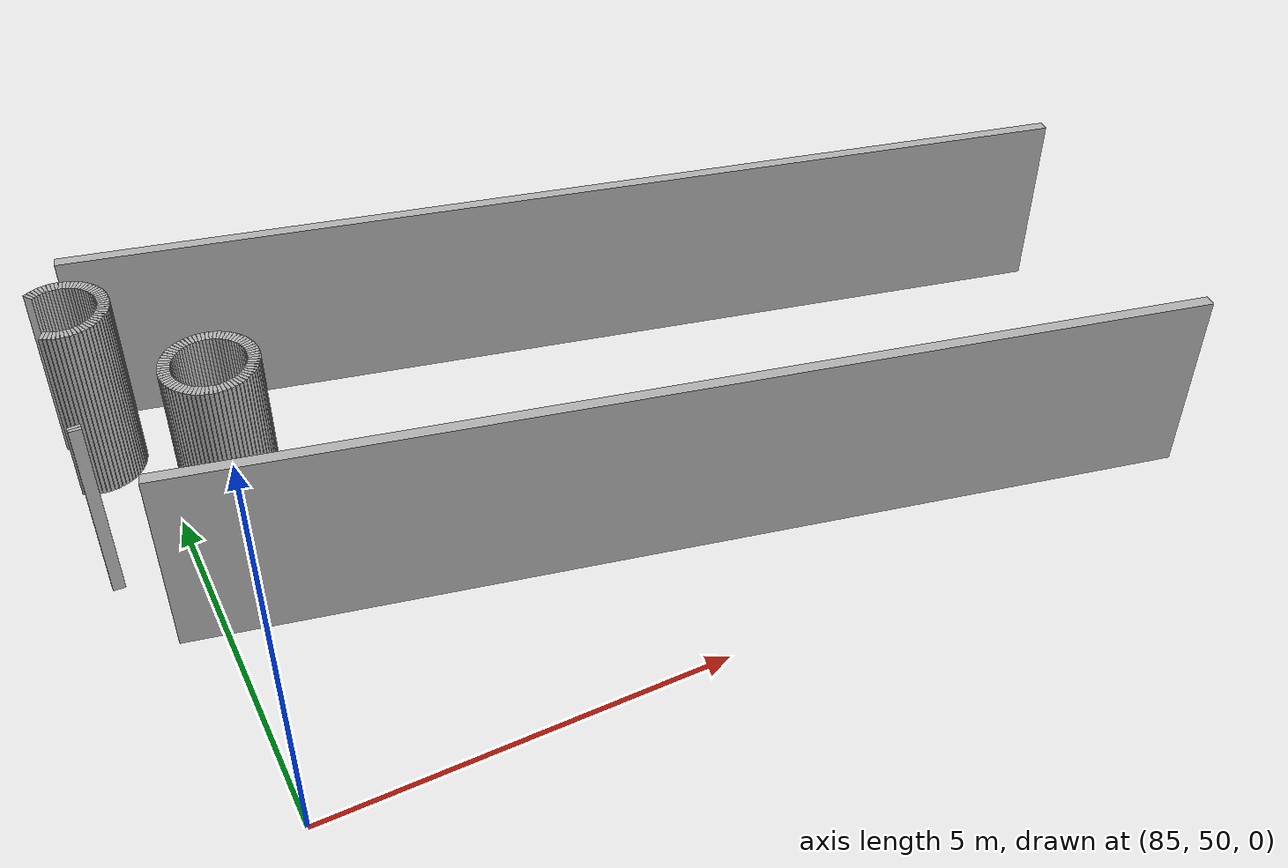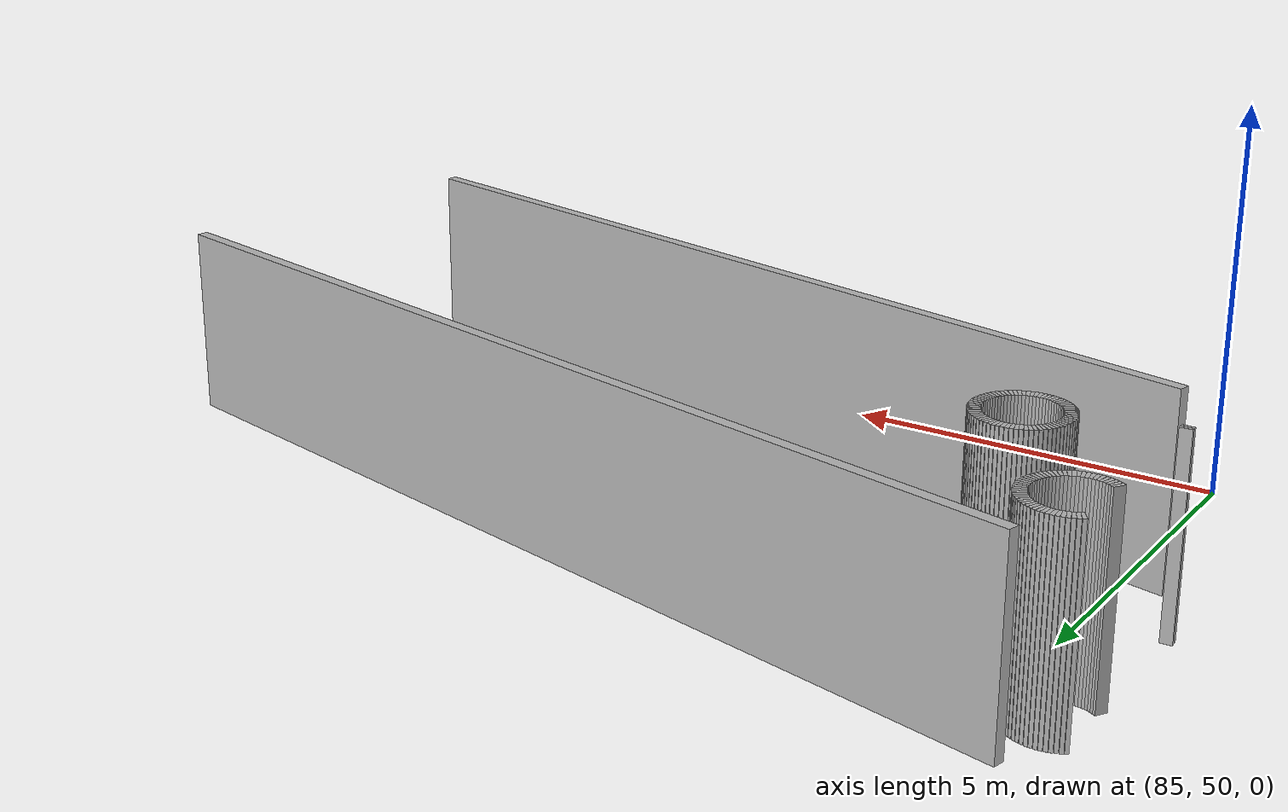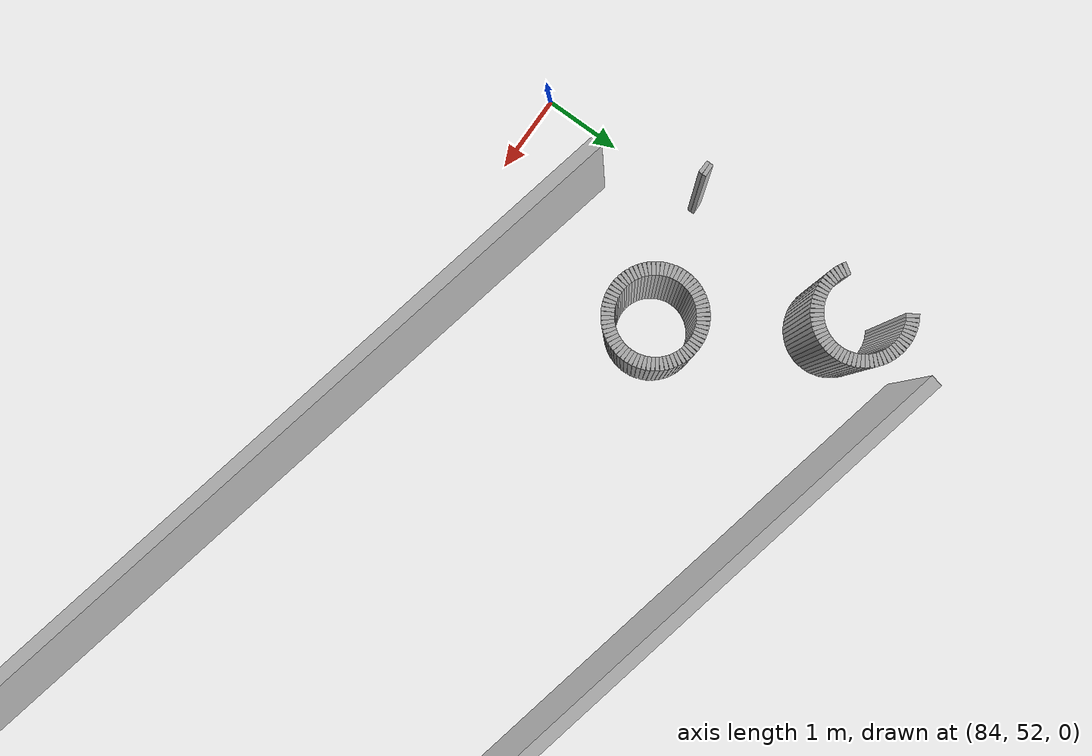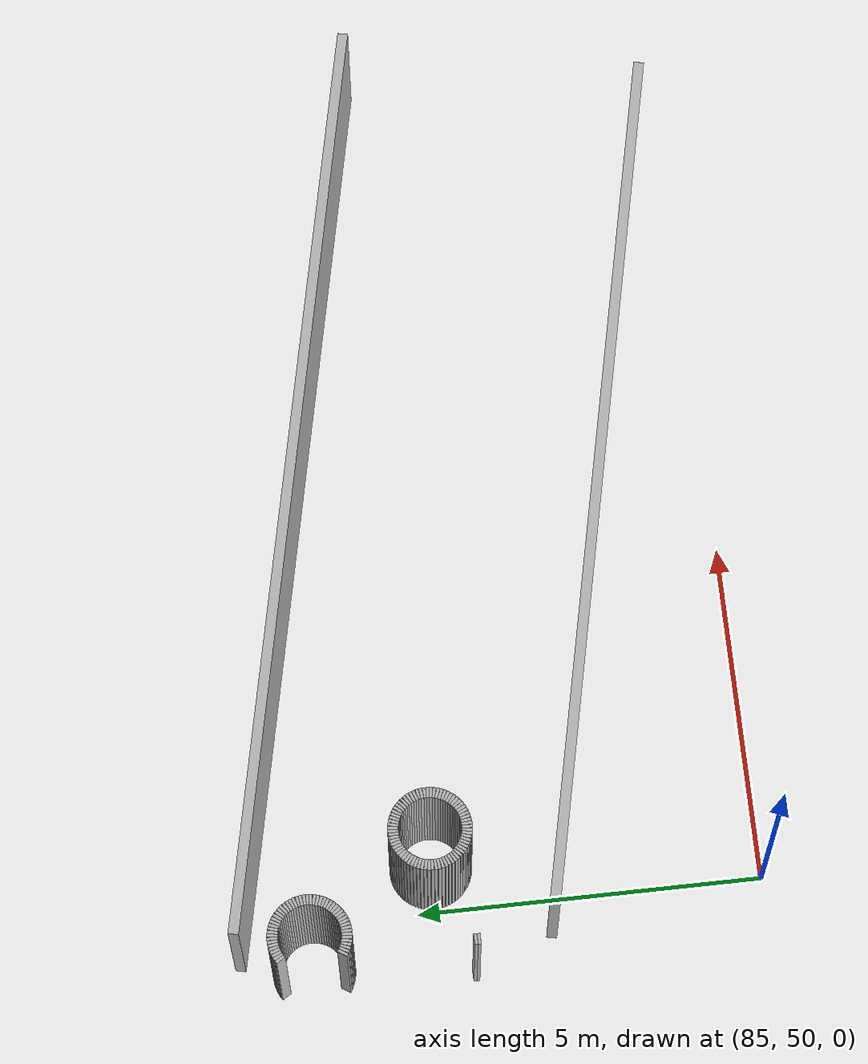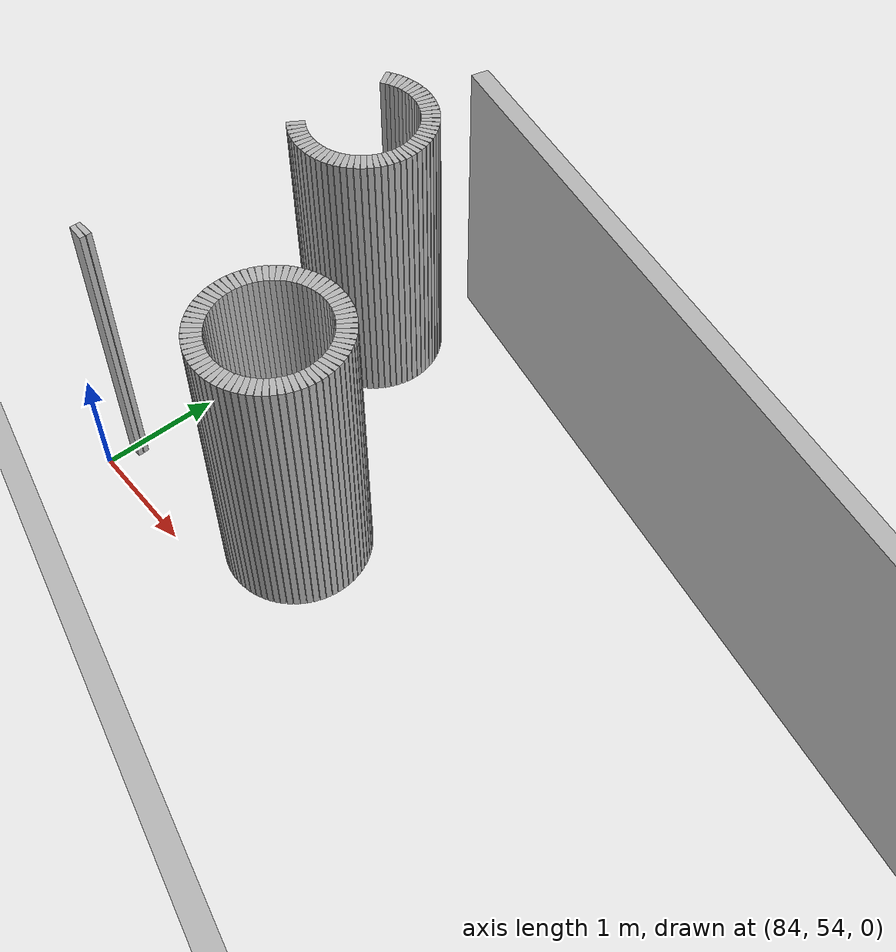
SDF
<sdf version="1.6">
 <model name="sps_1002">
  <static>1</static>
  <allow_auto_disable>0</allow_auto_disable>
  <link name="Wall360">
   <collision name="collision"><geometry><box><size>12.6978 0.15 2.5</size></box></geometry></collision>
   <visual name="visual">
    <geometry><box><size>12.6978 0.15 2.5</size></box></geometry>
    <transparency>0.0</transparency>
   </visual>
   <pose>90.6731 51.7684 1.25 0 -0 2.9273</pose>
  </link>
  <link name="Wall540">
   <collision name="collision"><geometry><box><size>13.6549 0.15 2.5</size></box></geometry></collision>
   <visual name="visual">
    <geometry><box><size>13.6549 0.15 2.5</size></box></geometry>
    <transparency>0.0</transparency>
   </visual>
   <pose>91.1407 56.1696 1.25 0 -0 2.9273</pose>
  </link>
  <link name="Wall913">
   <collision name="collision"><geometry><box><size>0.0453637 0.15 2.5</size></box></geometry></collision>
   <visual name="visual">
    <geometry><box><size>0.0453637 0.15 2.5</size></box></geometry>
    <transparency>0.0</transparency>
   </visual>
   <pose>85.9802 55.1557 1.25 0 0 -0.653727</pose>
  </link>
  <link name="Wall914">
   <collision name="collision"><geometry><box><size>0.0453148 0.15 2.5</size></box></geometry></collision>
   <visual name="visual">
    <geometry><box><size>0.0453148 0.15 2.5</size></box></geometry>
    <transparency>0.0</transparency>
   </visual>
   <pose>86.0149 55.1266 1.25 0 0 -0.742526</pose>
  </link>
  <link name="Wall915">
   <collision name="collision"><geometry><box><size>0.0454498 0.15 2.5</size></box></geometry></collision>
   <visual name="visual">
    <geometry><box><size>0.0454498 0.15 2.5</size></box></geometry>
    <transparency>0.0</transparency>
   </visual>
   <pose>86.047 55.0945 1.25 0 0 -0.830994</pose>
  </link>
  <link name="Wall916">
   <collision name="collision"><geometry><box><size>0.0453637 0.15 2.5</size></box></geometry></collision>
   <visual name="visual">
    <geometry><box><size>0.0453637 0.15 2.5</size></box></geometry>
    <transparency>0.0</transparency>
   </visual>
   <pose>86.0761 55.0597 1.25 0 0 -0.91707</pose>
  </link>
  <link name="Wall917">
   <collision name="collision"><geometry><box><size>0.045342 0.15 2.5</size></box></geometry></collision>
   <visual name="visual">
    <geometry><box><size>0.045342 0.15 2.5</size></box></geometry>
    <transparency>0.0</transparency>
   </visual>
   <pose>86.1021 55.0226 1.25 0 0 -1.00221</pose>
  </link>
  <link name="Wall918">
   <collision name="collision"><geometry><box><size>0.0453724 0.15 2.5</size></box></geometry></collision>
   <visual name="visual">
    <geometry><box><size>0.0453724 0.15 2.5</size></box></geometry>
    <transparency>0.0</transparency>
   </visual>
   <pose>86.1248 54.9834 1.25 0 0 -1.0897</pose>
  </link>
  <link name="Wall919">
   <collision name="collision"><geometry><box><size>0.0454525 0.15 2.5</size></box></geometry></collision>
   <visual name="visual">
    <geometry><box><size>0.0454525 0.15 2.5</size></box></geometry>
    <transparency>0.0</transparency>
   </visual>
   <pose>86.144 54.9423 1.25 0 0 -1.17807</pose>
  </link>
  <link name="Wall920">
   <collision name="collision"><geometry><box><size>0.0453057 0.15 2.5</size></box></geometry></collision>
   <visual name="visual">
    <geometry><box><size>0.0453057 0.15 2.5</size></box></geometry>
    <transparency>0.0</transparency>
   </visual>
   <pose>86.1595 54.8997 1.25 0 0 -1.26566</pose>
  </link>
  <link name="Wall921">
   <collision name="collision"><geometry><box><size>0.0452557 0.15 2.5</size></box></geometry></collision>
   <visual name="visual">
    <geometry><box><size>0.0452557 0.15 2.5</size></box></geometry>
    <transparency>0.0</transparency>
   </visual>
   <pose>86.1712 54.856 1.25 0 0 -1.3533</pose>
  </link>
  <link name="Wall922">
   <collision name="collision"><geometry><box><size>0.0453551 0.15 2.5</size></box></geometry></collision>
   <visual name="visual">
    <geometry><box><size>0.0453551 0.15 2.5</size></box></geometry>
    <transparency>0.0</transparency>
   </visual>
   <pose>86.1789 54.8114 1.25 0 0 -1.4426</pose>
  </link>
  <link name="Wall923">
   <collision name="collision"><geometry><box><size>0.0454548 0.15 2.5</size></box></geometry></collision>
   <visual name="visual">
    <geometry><box><size>0.0454548 0.15 2.5</size></box></geometry>
    <transparency>0.0</transparency>
   </visual>
   <pose>86.1829 54.7662 1.25 0 0 -1.52647</pose>
  </link>
  <link name="Wall924">
   <collision name="collision"><geometry><box><size>0.0454548 0.15 2.5</size></box></geometry></collision>
   <visual name="visual">
    <geometry><box><size>0.0454548 0.15 2.5</size></box></geometry>
    <transparency>0.0</transparency>
   </visual>
   <pose>86.1829 54.7208 1.25 0 0 -1.61512</pose>
  </link>
  <link name="Wall925">
   <collision name="collision"><geometry><box><size>0.0451735 0.15 2.5</size></box></geometry></collision>
   <visual name="visual">
    <geometry><box><size>0.0451735 0.15 2.5</size></box></geometry>
    <transparency>0.0</transparency>
   </visual>
   <pose>86.1789 54.6757 1.25 0 0 -1.69951</pose>
  </link>
  <link name="Wall926">
   <collision name="collision"><geometry><box><size>0.0454876 0.15 2.5</size></box></geometry></collision>
   <visual name="visual">
    <geometry><box><size>0.0454876 0.15 2.5</size></box></geometry>
    <transparency>0.0</transparency>
   </visual>
   <pose>86.171 54.6311 1.25 0 0 -1.79267</pose>
  </link>
  <link name="Wall927">
   <collision name="collision"><geometry><box><size>0.0453057 0.15 2.5</size></box></geometry></collision>
   <visual name="visual">
    <geometry><box><size>0.0453057 0.15 2.5</size></box></geometry>
    <transparency>0.0</transparency>
   </visual>
   <pose>86.1592 54.5873 1.25 0 0 -1.87593</pose>
  </link>
  <link name="Wall928">
   <collision name="collision"><geometry><box><size>0.0454525 0.15 2.5</size></box></geometry></collision>
   <visual name="visual">
    <geometry><box><size>0.0454525 0.15 2.5</size></box></geometry>
    <transparency>0.0</transparency>
   </visual>
   <pose>86.1437 54.5447 1.25 0 0 -1.96352</pose>
  </link>
  <link name="Wall929">
   <collision name="collision"><geometry><box><size>0.0453724 0.15 2.5</size></box></geometry></collision>
   <visual name="visual">
    <geometry><box><size>0.0453724 0.15 2.5</size></box></geometry>
    <transparency>0.0</transparency>
   </visual>
   <pose>86.1245 54.5036 1.25 0 0 -2.05189</pose>
  </link>
  <link name="Wall930">
   <collision name="collision"><geometry><box><size>0.0453092 0.15 2.5</size></box></geometry></collision>
   <visual name="visual">
    <geometry><box><size>0.0453092 0.15 2.5</size></box></geometry>
    <transparency>0.0</transparency>
   </visual>
   <pose>86.1019 54.4644 1.25 0 0 -2.13825</pose>
  </link>
  <link name="Wall931">
   <collision name="collision"><geometry><box><size>0.0453524 0.15 2.5</size></box></geometry></collision>
   <visual name="visual">
    <geometry><box><size>0.0453524 0.15 2.5</size></box></geometry>
    <transparency>0.0</transparency>
   </visual>
   <pose>86.0759 54.4273 1.25 0 0 -2.22641</pose>
  </link>
  <link name="Wall932">
   <collision name="collision"><geometry><box><size>0.0453186 0.15 2.5</size></box></geometry></collision>
   <visual name="visual">
    <geometry><box><size>0.0453186 0.15 2.5</size></box></geometry>
    <transparency>0.0</transparency>
   </visual>
   <pose>86.0467 54.3926 1.25 0 0 -2.31142</pose>
  </link>
  <link name="Wall933">
   <collision name="collision"><geometry><box><size>0.0453974 0.15 2.5</size></box></geometry></collision>
   <visual name="visual">
    <geometry><box><size>0.0453974 0.15 2.5</size></box></geometry>
    <transparency>0.0</transparency>
   </visual>
   <pose>86.0148 54.3605 1.25 0 0 -2.39709</pose>
  </link>
  <link name="Wall934">
   <collision name="collision"><geometry><box><size>0.0453637 0.15 2.5</size></box></geometry></collision>
   <visual name="visual">
    <geometry><box><size>0.0453637 0.15 2.5</size></box></geometry>
    <transparency>0.0</transparency>
   </visual>
   <pose>85.9801 54.3313 1.25 0 0 -2.48787</pose>
  </link>
  <link name="Wall935">
   <collision name="collision"><geometry><box><size>0.0452437 0.15 2.5</size></box></geometry></collision>
   <visual name="visual">
    <geometry><box><size>0.0452437 0.15 2.5</size></box></geometry>
    <transparency>0.0</transparency>
   </visual>
   <pose>85.943 54.3054 1.25 0 0 -2.57642</pose>
  </link>
  <link name="Wall936">
   <collision name="collision"><geometry><box><size>0.0455348 0.15 2.5</size></box></geometry></collision>
   <visual name="visual">
    <geometry><box><size>0.0455348 0.15 2.5</size></box></geometry>
    <transparency>0.0</transparency>
   </visual>
   <pose>85.9036 54.2828 1.25 0 0 -2.66236</pose>
  </link>
  <link name="Wall937">
   <collision name="collision"><geometry><box><size>0.0452834 0.15 2.5</size></box></geometry></collision>
   <visual name="visual">
    <geometry><box><size>0.0452834 0.15 2.5</size></box></geometry>
    <transparency>0.0</transparency>
   </visual>
   <pose>85.8625 54.2636 1.25 0 0 -2.74732</pose>
  </link>
  <link name="Wall938">
   <collision name="collision"><geometry><box><size>0.0454804 0.15 2.5</size></box></geometry></collision>
   <visual name="visual">
    <geometry><box><size>0.0454804 0.15 2.5</size></box></geometry>
    <transparency>0.0</transparency>
   </visual>
   <pose>85.8199 54.2481 1.25 0 0 -2.83767</pose>
  </link>
  <link name="Wall939">
   <collision name="collision"><geometry><box><size>0.0452557 0.15 2.5</size></box></geometry></collision>
   <visual name="visual">
    <geometry><box><size>0.0452557 0.15 2.5</size></box></geometry>
    <transparency>0.0</transparency>
   </visual>
   <pose>85.7761 54.2364 1.25 0 0 -2.92409</pose>
  </link>
  <link name="Wall940">
   <collision name="collision"><geometry><box><size>0.0453869 0.15 2.5</size></box></geometry></collision>
   <visual name="visual">
    <geometry><box><size>0.0453869 0.15 2.5</size></box></geometry>
    <transparency>0.0</transparency>
   </visual>
   <pose>85.7316 54.2285 1.25 0 0 -3.00806</pose>
  </link>
  <link name="Wall941">
   <collision name="collision"><geometry><box><size>0.0454446 0.15 2.5</size></box></geometry></collision>
   <visual name="visual">
    <geometry><box><size>0.0454446 0.15 2.5</size></box></geometry>
    <transparency>0.0</transparency>
   </visual>
   <pose>85.6864 54.2246 1.25 0 0 -3.10263</pose>
  </link>
  <link name="Wall942">
   <collision name="collision"><geometry><box><size>0.0452617 0.15 2.5</size></box></geometry></collision>
   <visual name="visual">
    <geometry><box><size>0.0452617 0.15 2.5</size></box></geometry>
    <transparency>0.0</transparency>
   </visual>
   <pose>85.641 54.2246 1.25 0 -0 3.10248</pose>
  </link>
  <link name="Wall943">
   <collision name="collision"><geometry><box><size>0.0453869 0.15 2.5</size></box></geometry></collision>
   <visual name="visual">
    <geometry><box><size>0.0453869 0.15 2.5</size></box></geometry>
    <transparency>0.0</transparency>
   </visual>
   <pose>85.5959 54.2285 1.25 0 -0 3.00806</pose>
  </link>
  <link name="Wall944">
   <collision name="collision"><geometry><box><size>0.0454742 0.15 2.5</size></box></geometry></collision>
   <visual name="visual">
    <geometry><box><size>0.0454742 0.15 2.5</size></box></geometry>
    <transparency>0.0</transparency>
   </visual>
   <pose>85.5513 54.2365 1.25 0 -0 2.92103</pose>
  </link>
  <link name="Wall945">
   <collision name="collision"><geometry><box><size>0.0453057 0.15 2.5</size></box></geometry></collision>
   <visual name="visual">
    <geometry><box><size>0.0453057 0.15 2.5</size></box></geometry>
    <transparency>0.0</transparency>
   </visual>
   <pose>85.5075 54.2483 1.25 0 -0 2.83646</pose>
  </link>
  <link name="Wall946">
   <collision name="collision"><geometry><box><size>0.0452834 0.15 2.5</size></box></geometry></collision>
   <visual name="visual">
    <geometry><box><size>0.0452834 0.15 2.5</size></box></geometry>
    <transparency>0.0</transparency>
   </visual>
   <pose>85.465 54.2638 1.25 0 -0 2.74732</pose>
  </link>
  <link name="Wall947">
   <collision name="collision"><geometry><box><size>0.045288 0.15 2.5</size></box></geometry></collision>
   <visual name="visual">
    <geometry><box><size>0.045288 0.15 2.5</size></box></geometry>
    <transparency>0.0</transparency>
   </visual>
   <pose>85.4239 54.2829 1.25 0 -0 2.66408</pose>
  </link>
  <link name="Wall948">
   <collision name="collision"><geometry><box><size>0.0454964 0.15 2.5</size></box></geometry></collision>
   <visual name="visual">
    <geometry><box><size>0.0454964 0.15 2.5</size></box></geometry>
    <transparency>0.0</transparency>
   </visual>
   <pose>85.3846 54.3055 1.25 0 -0 2.57517</pose>
  </link>
  <link name="Wall949">
   <collision name="collision"><geometry><box><size>0.0454753 0.15 2.5</size></box></geometry></collision>
   <visual name="visual">
    <geometry><box><size>0.0454753 0.15 2.5</size></box></geometry>
    <transparency>0.0</transparency>
   </visual>
   <pose>85.3474 54.3316 1.25 0 -0 2.48467</pose>
  </link>
  <link name="Wall950">
   <collision name="collision"><geometry><box><size>0.0453148 0.15 2.5</size></box></geometry></collision>
   <visual name="visual">
    <geometry><box><size>0.0453148 0.15 2.5</size></box></geometry>
    <transparency>0.0</transparency>
   </visual>
   <pose>85.3127 54.3608 1.25 0 -0 2.39907</pose>
  </link>
  <link name="Wall951">
   <collision name="collision"><geometry><box><size>0.0452735 0.15 2.5</size></box></geometry></collision>
   <visual name="visual">
    <geometry><box><size>0.0452735 0.15 2.5</size></box></geometry>
    <transparency>0.0</transparency>
   </visual>
   <pose>85.2808 54.3928 1.25 0 -0 2.31233</pose>
  </link>
  <link name="Wall952">
   <collision name="collision"><geometry><box><size>0.0453637 0.15 2.5</size></box></geometry></collision>
   <visual name="visual">
    <geometry><box><size>0.0453637 0.15 2.5</size></box></geometry>
    <transparency>0.0</transparency>
   </visual>
   <pose>85.2517 54.4275 1.25 0 -0 2.22452</pose>
  </link>
  <link name="Wall953">
   <collision name="collision"><geometry><box><size>0.045342 0.15 2.5</size></box></geometry></collision>
   <visual name="visual">
    <geometry><box><size>0.045342 0.15 2.5</size></box></geometry>
    <transparency>0.0</transparency>
   </visual>
   <pose>85.2257 54.4646 1.25 0 -0 2.13938</pose>
  </link>
  <link name="Wall954">
   <collision name="collision"><geometry><box><size>0.0453183 0.15 2.5</size></box></geometry></collision>
   <visual name="visual">
    <geometry><box><size>0.0453183 0.15 2.5</size></box></geometry>
    <transparency>0.0</transparency>
   </visual>
   <pose>85.203 54.5038 1.25 0 -0 2.05251</pose>
  </link>
  <link name="Wall955">
   <collision name="collision"><geometry><box><size>0.0453827 0.15 2.5</size></box></geometry></collision>
   <visual name="visual">
    <geometry><box><size>0.0453827 0.15 2.5</size></box></geometry>
    <transparency>0.0</transparency>
   </visual>
   <pose>85.1839 54.5449 1.25 0 -0 1.95979</pose>
  </link>
  <link name="Wall956">
   <collision name="collision"><geometry><box><size>0.0454804 0.15 2.5</size></box></geometry></collision>
   <visual name="visual">
    <geometry><box><size>0.0454804 0.15 2.5</size></box></geometry>
    <transparency>0.0</transparency>
   </visual>
   <pose>85.1684 54.5876 1.25 0 -0 1.87472</pose>
  </link>
  <link name="Wall957">
   <collision name="collision"><geometry><box><size>0.0453685 0.15 2.5</size></box></geometry></collision>
   <visual name="visual">
    <geometry><box><size>0.0453685 0.15 2.5</size></box></geometry>
    <transparency>0.0</transparency>
   </visual>
   <pose>85.1566 54.6314 1.25 0 -0 1.79326</pose>
  </link>
  <link name="Wall958">
   <collision name="collision"><geometry><box><size>0.0453551 0.15 2.5</size></box></geometry></collision>
   <visual name="visual">
    <geometry><box><size>0.0453551 0.15 2.5</size></box></geometry>
    <transparency>0.0</transparency>
   </visual>
   <pose>85.1487 54.676 1.25 0 -0 1.69899</pose>
  </link>
  <link name="Wall959">
   <collision name="collision"><geometry><box><size>0.0452082 0.15 2.5</size></box></geometry></collision>
   <visual name="visual">
    <geometry><box><size>0.0452082 0.15 2.5</size></box></geometry>
    <transparency>0.0</transparency>
   </visual>
   <pose>85.1449 54.7211 1.25 0 -0 1.61401</pose>
  </link>
  <link name="Wall960">
   <collision name="collision"><geometry><box><size>0.0454521 0.15 2.5</size></box></geometry></collision>
   <visual name="visual">
    <geometry><box><size>0.0454521 0.15 2.5</size></box></geometry>
    <transparency>0.0</transparency>
   </visual>
   <pose>85.1449 54.7664 1.25 0 -0 1.52781</pose>
  </link>
  <link name="Wall961">
   <collision name="collision"><geometry><box><size>0.0454474 0.15 2.5</size></box></geometry></collision>
   <visual name="visual">
    <geometry><box><size>0.0454474 0.15 2.5</size></box></geometry>
    <transparency>0.0</transparency>
   </visual>
   <pose>85.1489 54.8116 1.25 0 -0 1.43745</pose>
  </link>
  <link name="Wall962">
   <collision name="collision"><geometry><box><size>0.0452557 0.15 2.5</size></box></geometry></collision>
   <visual name="visual">
    <geometry><box><size>0.0452557 0.15 2.5</size></box></geometry>
    <transparency>0.0</transparency>
   </visual>
   <pose>85.1568 54.8562 1.25 0 -0 1.3533</pose>
  </link>
  <link name="Wall963">
   <collision name="collision"><geometry><box><size>0.0454804 0.15 2.5</size></box></geometry></collision>
   <visual name="visual">
    <geometry><box><size>0.0454804 0.15 2.5</size></box></geometry>
    <transparency>0.0</transparency>
   </visual>
   <pose>85.1684 54.9 1.25 0 -0 1.26687</pose>
  </link>
  <link name="Wall964">
   <collision name="collision"><geometry><box><size>0.0452834 0.15 2.5</size></box></geometry></collision>
   <visual name="visual">
    <geometry><box><size>0.0452834 0.15 2.5</size></box></geometry>
    <transparency>0.0</transparency>
   </visual>
   <pose>85.184 54.9426 1.25 0 -0 1.17652</pose>
  </link>
  <link name="Wall965">
   <collision name="collision"><geometry><box><size>0.0453183 0.15 2.5</size></box></geometry></collision>
   <visual name="visual">
    <geometry><box><size>0.0453183 0.15 2.5</size></box></geometry>
    <transparency>0.0</transparency>
   </visual>
   <pose>85.2031 54.9836 1.25 0 -0 1.08908</pose>
  </link>
  <link name="Wall966">
   <collision name="collision"><geometry><box><size>0.0454964 0.15 2.5</size></box></geometry></collision>
   <visual name="visual">
    <geometry><box><size>0.0454964 0.15 2.5</size></box></geometry>
    <transparency>0.0</transparency>
   </visual>
   <pose>85.2259 55.0229 1.25 0 -0 1.00438</pose>
  </link>
  <link name="Wall967">
   <collision name="collision"><geometry><box><size>0.0453637 0.15 2.5</size></box></geometry></collision>
   <visual name="visual">
    <geometry><box><size>0.0453637 0.15 2.5</size></box></geometry>
    <transparency>0.0</transparency>
   </visual>
   <pose>85.2519 55.0601 1.25 0 -0 0.91707</pose>
  </link>
  <link name="Wall968">
   <collision name="collision"><geometry><box><size>0.0452735 0.15 2.5</size></box></geometry></collision>
   <visual name="visual">
    <geometry><box><size>0.0452735 0.15 2.5</size></box></geometry>
    <transparency>0.0</transparency>
   </visual>
   <pose>85.2809 55.0948 1.25 0 -0 0.829263</pose>
  </link>
  <link name="Wall969">
   <collision name="collision"><geometry><box><size>0.0453598 0.15 2.5</size></box></geometry></collision>
   <visual name="visual">
    <geometry><box><size>0.0453598 0.15 2.5</size></box></geometry>
    <transparency>0.0</transparency>
   </visual>
   <pose>85.3129 55.1268 1.25 0 -0 0.741617</pose>
  </link>
  <link name="Wall970">
   <collision name="collision"><geometry><box><size>0.0453637 0.15 2.5</size></box></geometry></collision>
   <visual name="visual">
    <geometry><box><size>0.0453637 0.15 2.5</size></box></geometry>
    <transparency>0.0</transparency>
   </visual>
   <pose>85.3477 55.1559 1.25 0 -0 0.653727</pose>
  </link>
  <link name="Wall971">
   <collision name="collision"><geometry><box><size>0.0454964 0.15 2.5</size></box></geometry></collision>
   <visual name="visual">
    <geometry><box><size>0.0454964 0.15 2.5</size></box></geometry>
    <transparency>0.0</transparency>
   </visual>
   <pose>85.3849 55.1819 1.25 0 -0 0.566421</pose>
  </link>
  <link name="Wall972">
   <collision name="collision"><geometry><box><size>0.0452338 0.15 2.5</size></box></geometry></collision>
   <visual name="visual">
    <geometry><box><size>0.0452338 0.15 2.5</size></box></geometry>
    <transparency>0.0</transparency>
   </visual>
   <pose>85.4242 55.2045 1.25 0 -0 0.478131</pose>
  </link>
  <link name="Wall973">
   <collision name="collision"><geometry><box><size>0.0454525 0.15 2.5</size></box></geometry></collision>
   <visual name="visual">
    <geometry><box><size>0.0454525 0.15 2.5</size></box></geometry>
    <transparency>0.0</transparency>
   </visual>
   <pose>85.4652 55.2236 1.25 0 -0 0.392725</pose>
  </link>
  <link name="Wall974">
   <collision name="collision"><geometry><box><size>0.0452874 0.15 2.5</size></box></geometry></collision>
   <visual name="visual">
    <geometry><box><size>0.0452874 0.15 2.5</size></box></geometry>
    <transparency>0.0</transparency>
   </visual>
   <pose>85.5078 55.2391 1.25 0 -0 0.30385</pose>
  </link>
  <link name="Wall975">
   <collision name="collision"><geometry><box><size>0.0452689 0.15 2.5</size></box></geometry></collision>
   <visual name="visual">
    <geometry><box><size>0.0452689 0.15 2.5</size></box></geometry>
    <transparency>0.0</transparency>
   </visual>
   <pose>85.5515 55.2508 1.25 0 -0 0.218815</pose>
  </link>
  <link name="Wall976">
   <collision name="collision"><geometry><box><size>0.0454394 0.15 2.5</size></box></geometry></collision>
   <visual name="visual">
    <geometry><box><size>0.0454394 0.15 2.5</size></box></geometry>
    <transparency>0.0</transparency>
   </visual>
   <pose>85.5962 55.2587 1.25 0 -0 0.132019</pose>
  </link>
  <link name="Wall977">
   <collision name="collision"><geometry><box><size>0.0454548 0.15 2.5</size></box></geometry></collision>
   <visual name="visual">
    <geometry><box><size>0.0454548 0.15 2.5</size></box></geometry>
    <transparency>0.0</transparency>
   </visual>
   <pose>85.6414 55.2627 1.25 0 -0 0.0443258</pose>
  </link>
  <link name="Wall978">
   <collision name="collision"><geometry><box><size>0.0453938 0.15 2.5</size></box></geometry></collision>
   <visual name="visual">
    <geometry><box><size>0.0453938 0.15 2.5</size></box></geometry>
    <transparency>0.0</transparency>
   </visual>
   <pose>85.6868 55.2627 1.25 0 0 -0.0443854</pose>
  </link>
  <link name="Wall979">
   <collision name="collision"><geometry><box><size>0.0451973 0.15 2.5</size></box></geometry></collision>
   <visual name="visual">
    <geometry><box><size>0.0451973 0.15 2.5</size></box></geometry>
    <transparency>0.0</transparency>
   </visual>
   <pose>85.7318 55.2587 1.25 0 0 -0.13273</pose>
  </link>
  <link name="Wall980">
   <collision name="collision"><geometry><box><size>0.0455072 0.15 2.5</size></box></geometry></collision>
   <visual name="visual">
    <geometry><box><size>0.0455072 0.15 2.5</size></box></geometry>
    <transparency>0.0</transparency>
   </visual>
   <pose>85.7765 55.2508 1.25 0 0 -0.217651</pose>
  </link>
  <link name="Wall981">
   <collision name="collision"><geometry><box><size>0.0452874 0.15 2.5</size></box></geometry></collision>
   <visual name="visual">
    <geometry><box><size>0.0452874 0.15 2.5</size></box></geometry>
    <transparency>0.0</transparency>
   </visual>
   <pose>85.8203 55.2391 1.25 0 0 -0.30385</pose>
  </link>
  <link name="Wall982">
   <collision name="collision"><geometry><box><size>0.0454525 0.15 2.5</size></box></geometry></collision>
   <visual name="visual">
    <geometry><box><size>0.0454525 0.15 2.5</size></box></geometry>
    <transparency>0.0</transparency>
   </visual>
   <pose>85.8629 55.2236 1.25 0 0 -0.392725</pose>
  </link>
  <link name="Wall983">
   <collision name="collision"><geometry><box><size>0.0453183 0.15 2.5</size></box></geometry></collision>
   <visual name="visual">
    <geometry><box><size>0.0453183 0.15 2.5</size></box></geometry>
    <transparency>0.0</transparency>
   </visual>
   <pose>85.904 55.2044 1.25 0 0 -0.481718</pose>
  </link>
  <link name="Wall984">
   <collision name="collision"><geometry><box><size>0.045342 0.15 2.5</size></box></geometry></collision>
   <visual name="visual">
    <geometry><box><size>0.045342 0.15 2.5</size></box></geometry>
    <transparency>0.0</transparency>
   </visual>
   <pose>85.9431 55.1817 1.25 0 0 -0.568588</pose>
  </link>
  <link name="Wall1507">
   <collision name="collision"><geometry><box><size>0.0455462 0.15 2.5</size></box></geometry></collision>
   <visual name="visual">
    <geometry><box><size>0.0455462 0.15 2.5</size></box></geometry>
    <transparency>0.0</transparency>
   </visual>
   <pose>84.6379 56.9829 1.25 0 0 -0.652346</pose>
  </link>
  <link name="Wall1508">
   <collision name="collision"><geometry><box><size>0.0453186 0.15 2.5</size></box></geometry></collision>
   <visual name="visual">
    <geometry><box><size>0.0453186 0.15 2.5</size></box></geometry>
    <transparency>0.0</transparency>
   </visual>
   <pose>84.6728 56.9538 1.25 0 0 -0.740624</pose>
  </link>
  <link name="Wall1509">
   <collision name="collision"><geometry><box><size>0.0454087 0.15 2.5</size></box></geometry></collision>
   <visual name="visual">
    <geometry><box><size>0.0454087 0.15 2.5</size></box></geometry>
    <transparency>0.0</transparency>
   </visual>
   <pose>84.7048 56.9217 1.25 0 0 -0.831987</pose>
  </link>
  <link name="Wall1510">
   <collision name="collision"><geometry><box><size>0.0453637 0.15 2.5</size></box></geometry></collision>
   <visual name="visual">
    <geometry><box><size>0.0453637 0.15 2.5</size></box></geometry>
    <transparency>0.0</transparency>
   </visual>
   <pose>84.7338 56.8869 1.25 0 0 -0.91707</pose>
  </link>
  <link name="Wall1511">
   <collision name="collision"><geometry><box><size>0.045342 0.15 2.5</size></box></geometry></collision>
   <visual name="visual">
    <geometry><box><size>0.045342 0.15 2.5</size></box></geometry>
    <transparency>0.0</transparency>
   </visual>
   <pose>84.7598 56.8498 1.25 0 0 -1.00221</pose>
  </link>
  <link name="Wall1512">
   <collision name="collision"><geometry><box><size>0.045288 0.15 2.5</size></box></geometry></collision>
   <visual name="visual">
    <geometry><box><size>0.045288 0.15 2.5</size></box></geometry>
    <transparency>0.0</transparency>
   </visual>
   <pose>84.7825 56.8106 1.25 0 0 -1.09329</pose>
  </link>
  <link name="Wall1513">
   <collision name="collision"><geometry><box><size>0.0454525 0.15 2.5</size></box></geometry></collision>
   <visual name="visual">
    <geometry><box><size>0.0454525 0.15 2.5</size></box></geometry>
    <transparency>0.0</transparency>
   </visual>
   <pose>84.8016 56.7695 1.25 0 0 -1.17807</pose>
  </link>
  <link name="Wall1514">
   <collision name="collision"><geometry><box><size>0.0453057 0.15 2.5</size></box></geometry></collision>
   <visual name="visual">
    <geometry><box><size>0.0453057 0.15 2.5</size></box></geometry>
    <transparency>0.0</transparency>
   </visual>
   <pose>84.8171 56.7269 1.25 0 0 -1.26566</pose>
  </link>
  <link name="Wall1515">
   <collision name="collision"><geometry><box><size>0.0454345 0.15 2.5</size></box></geometry></collision>
   <visual name="visual">
    <geometry><box><size>0.0454345 0.15 2.5</size></box></geometry>
    <transparency>0.0</transparency>
   </visual>
   <pose>84.8288 56.6831 1.25 0 0 -1.35417</pose>
  </link>
  <link name="Wall1516">
   <collision name="collision"><geometry><box><size>0.0453869 0.15 2.5</size></box></geometry></collision>
   <visual name="visual">
    <geometry><box><size>0.0453869 0.15 2.5</size></box></geometry>
    <transparency>0.0</transparency>
   </visual>
   <pose>84.8367 56.6384 1.25 0 0 -1.43727</pose>
  </link>
  <link name="Wall1517">
   <collision name="collision"><geometry><box><size>0.0452692 0.15 2.5</size></box></geometry></collision>
   <visual name="visual">
    <geometry><box><size>0.0452692 0.15 2.5</size></box></geometry>
    <transparency>0.0</transparency>
   </visual>
   <pose>84.8407 56.5933 1.25 0 0 -1.52764</pose>
  </link>
  <link name="Wall1518">
   <collision name="collision"><geometry><box><size>0.0454521 0.15 2.5</size></box></geometry></collision>
   <visual name="visual">
    <geometry><box><size>0.0454521 0.15 2.5</size></box></geometry>
    <transparency>0.0</transparency>
   </visual>
   <pose>84.8407 56.548 1.25 0 0 -1.61378</pose>
  </link>
  <link name="Wall1519">
   <collision name="collision"><geometry><box><size>0.0453869 0.15 2.5</size></box></geometry></collision>
   <visual name="visual">
    <geometry><box><size>0.0453869 0.15 2.5</size></box></geometry>
    <transparency>0.0</transparency>
   </visual>
   <pose>84.8367 56.5028 1.25 0 0 -1.70433</pose>
  </link>
  <link name="Wall1520">
   <collision name="collision"><geometry><box><size>0.0452557 0.15 2.5</size></box></geometry></collision>
   <visual name="visual">
    <geometry><box><size>0.0452557 0.15 2.5</size></box></geometry>
    <transparency>0.0</transparency>
   </visual>
   <pose>84.8288 56.4582 1.25 0 0 -1.78829</pose>
  </link>
  <link name="Wall1521">
   <collision name="collision"><geometry><box><size>0.0453057 0.15 2.5</size></box></geometry></collision>
   <visual name="visual">
    <geometry><box><size>0.0453057 0.15 2.5</size></box></geometry>
    <transparency>0.0</transparency>
   </visual>
   <pose>84.8171 56.4145 1.25 0 0 -1.87593</pose>
  </link>
  <link name="Wall1522">
   <collision name="collision"><geometry><box><size>0.0454525 0.15 2.5</size></box></geometry></collision>
   <visual name="visual">
    <geometry><box><size>0.0454525 0.15 2.5</size></box></geometry>
    <transparency>0.0</transparency>
   </visual>
   <pose>84.8016 56.3719 1.25 0 0 -1.96352</pose>
  </link>
  <link name="Wall1523">
   <collision name="collision"><geometry><box><size>0.0453724 0.15 2.5</size></box></geometry></collision>
   <visual name="visual">
    <geometry><box><size>0.0453724 0.15 2.5</size></box></geometry>
    <transparency>0.0</transparency>
   </visual>
   <pose>84.7824 56.3308 1.25 0 0 -2.05189</pose>
  </link>
  <link name="Wall1524">
   <collision name="collision"><geometry><box><size>0.045342 0.15 2.5</size></box></geometry></collision>
   <visual name="visual">
    <geometry><box><size>0.045342 0.15 2.5</size></box></geometry>
    <transparency>0.0</transparency>
   </visual>
   <pose>84.7597 56.2916 1.25 0 0 -2.13938</pose>
  </link>
  <link name="Wall1525">
   <collision name="collision"><geometry><box><size>0.0453637 0.15 2.5</size></box></geometry></collision>
   <visual name="visual">
    <geometry><box><size>0.0453637 0.15 2.5</size></box></geometry>
    <transparency>0.0</transparency>
   </visual>
   <pose>84.7337 56.2545 1.25 0 0 -2.22452</pose>
  </link>
  <link name="Wall1526">
   <collision name="collision"><geometry><box><size>0.0453148 0.15 2.5</size></box></geometry></collision>
   <visual name="visual">
    <geometry><box><size>0.0453148 0.15 2.5</size></box></geometry>
    <transparency>0.0</transparency>
   </visual>
   <pose>84.7046 56.2198 1.25 0 0 -2.31332</pose>
  </link>
  <link name="Wall1527">
   <collision name="collision"><geometry><box><size>0.0455322 0.15 2.5</size></box></geometry></collision>
   <visual name="visual">
    <geometry><box><size>0.0455322 0.15 2.5</size></box></geometry>
    <transparency>0.0</transparency>
   </visual>
   <pose>84.6724 56.1877 1.25 0 0 -2.39981</pose>
  </link>
  <link name="Wall1528">
   <collision name="collision"><geometry><box><size>0.0454008 0.15 2.5</size></box></geometry></collision>
   <visual name="visual">
    <geometry><box><size>0.0454008 0.15 2.5</size></box></geometry>
    <transparency>0.0</transparency>
   </visual>
   <pose>84.6377 56.1585 1.25 0 0 -2.4868</pose>
  </link>
  <link name="Wall1529">
   <collision name="collision"><geometry><box><size>0.0453092 0.15 2.5</size></box></geometry></collision>
   <visual name="visual">
    <geometry><box><size>0.0453092 0.15 2.5</size></box></geometry>
    <transparency>0.0</transparency>
   </visual>
   <pose>84.6005 56.1325 1.25 0 0 -2.57414</pose>
  </link>
  <link name="Wall1530">
   <collision name="collision"><geometry><box><size>0.0452338 0.15 2.5</size></box></geometry></collision>
   <visual name="visual">
    <geometry><box><size>0.0452338 0.15 2.5</size></box></geometry>
    <transparency>0.0</transparency>
   </visual>
   <pose>84.5614 56.1099 1.25 0 0 -2.66346</pose>
  </link>
  <link name="Wall1531">
   <collision name="collision"><geometry><box><size>0.0455089 0.15 2.5</size></box></geometry></collision>
   <visual name="visual">
    <geometry><box><size>0.0455089 0.15 2.5</size></box></geometry>
    <transparency>0.0</transparency>
   </visual>
   <pose>84.5203 56.0908 1.25 0 0 -2.74938</pose>
  </link>
  <link name="Wall1532">
   <collision name="collision"><geometry><box><size>0.0452475 0.15 2.5</size></box></geometry></collision>
   <visual name="visual">
    <geometry><box><size>0.0452475 0.15 2.5</size></box></geometry>
    <transparency>0.0</transparency>
   </visual>
   <pose>84.4777 56.0753 1.25 0 0 -2.83605</pose>
  </link>
  <link name="Wall1533">
   <collision name="collision"><geometry><box><size>0.0455072 0.15 2.5</size></box></geometry></collision>
   <visual name="visual">
    <geometry><box><size>0.0455072 0.15 2.5</size></box></geometry>
    <transparency>0.0</transparency>
   </visual>
   <pose>84.4339 56.0636 1.25 0 0 -2.92394</pose>
  </link>
  <link name="Wall1534">
   <collision name="collision"><geometry><box><size>0.0451973 0.15 2.5</size></box></geometry></collision>
   <visual name="visual">
    <geometry><box><size>0.0451973 0.15 2.5</size></box></geometry>
    <transparency>0.0</transparency>
   </visual>
   <pose>84.3892 56.0557 1.25 0 0 -3.00886</pose>
  </link>
  <link name="Wall1535">
   <collision name="collision"><geometry><box><size>0.0454548 0.15 2.5</size></box></geometry></collision>
   <visual name="visual">
    <geometry><box><size>0.0454548 0.15 2.5</size></box></geometry>
    <transparency>0.0</transparency>
   </visual>
   <pose>84.3441 56.0517 1.25 0 0 -3.09727</pose>
  </link>
  <link name="Wall1536">
   <collision name="collision"><geometry><box><size>0.0454023 0.15 2.5</size></box></geometry></collision>
   <visual name="visual">
    <geometry><box><size>0.0454023 0.15 2.5</size></box></geometry>
    <transparency>0.0</transparency>
   </visual>
   <pose>84.2988 56.0518 1.25 0 -0 3.09318</pose>
  </link>
  <link name="Wall1537">
   <collision name="collision"><geometry><box><size>0.0454156 0.15 2.5</size></box></geometry></collision>
   <visual name="visual">
    <geometry><box><size>0.0454156 0.15 2.5</size></box></geometry>
    <transparency>0.0</transparency>
   </visual>
   <pose>84.2536 56.0558 1.25 0 -0 3.01357</pose>
  </link>
  <link name="Wall1538">
   <collision name="collision"><geometry><box><size>0.0452689 0.15 2.5</size></box></geometry></collision>
   <visual name="visual">
    <geometry><box><size>0.0452689 0.15 2.5</size></box></geometry>
    <transparency>0.0</transparency>
   </visual>
   <pose>84.2089 56.0636 1.25 0 -0 2.92278</pose>
  </link>
  <link name="Wall1539">
   <collision name="collision"><geometry><box><size>0.0453611 0.15 2.5</size></box></geometry></collision>
   <visual name="visual">
    <geometry><box><size>0.0453611 0.15 2.5</size></box></geometry>
    <transparency>0.0</transparency>
   </visual>
   <pose>84.1652 56.0754 1.25 0 -0 2.83261</pose>
  </link>
  <link name="Wall1540">
   <collision name="collision"><geometry><box><size>0.0453827 0.15 2.5</size></box></geometry></collision>
   <visual name="visual">
    <geometry><box><size>0.0453827 0.15 2.5</size></box></geometry>
    <transparency>0.0</transparency>
   </visual>
   <pose>84.1226 56.0909 1.25 0 -0 2.75259</pose>
  </link>
  <link name="Wall1541">
   <collision name="collision"><geometry><box><size>0.0453183 0.15 2.5</size></box></geometry></collision>
   <visual name="visual">
    <geometry><box><size>0.0453183 0.15 2.5</size></box></geometry>
    <transparency>0.0</transparency>
   </visual>
   <pose>84.0816 56.11 1.25 0 -0 2.65987</pose>
  </link>
  <link name="Wall1542">
   <collision name="collision"><geometry><box><size>0.045342 0.15 2.5</size></box></geometry></collision>
   <visual name="visual">
    <geometry><box><size>0.045342 0.15 2.5</size></box></geometry>
    <transparency>0.0</transparency>
   </visual>
   <pose>84.0424 56.1327 1.25 0 -0 2.57301</pose>
  </link>
  <link name="Wall1565">
   <collision name="collision"><geometry><box><size>0.045211 0.15 2.5</size></box></geometry></collision>
   <visual name="visual">
    <geometry><box><size>0.045211 0.15 2.5</size></box></geometry>
    <transparency>0.0</transparency>
   </visual>
   <pose>84.0426 57.009 1.25 0 -0 0.564037</pose>
  </link>
  <link name="Wall1566">
   <collision name="collision"><geometry><box><size>0.0453183 0.15 2.5</size></box></geometry></collision>
   <visual name="visual">
    <geometry><box><size>0.0453183 0.15 2.5</size></box></geometry>
    <transparency>0.0</transparency>
   </visual>
   <pose>84.0817 57.0316 1.25 0 -0 0.481718</pose>
  </link>
  <link name="Wall1567">
   <collision name="collision"><geometry><box><size>0.0455089 0.15 2.5</size></box></geometry></collision>
   <visual name="visual">
    <geometry><box><size>0.0455089 0.15 2.5</size></box></geometry>
    <transparency>0.0</transparency>
   </visual>
   <pose>84.1229 57.0508 1.25 0 -0 0.392212</pose>
  </link>
  <link name="Wall1568">
   <collision name="collision"><geometry><box><size>0.0452475 0.15 2.5</size></box></geometry></collision>
   <visual name="visual">
    <geometry><box><size>0.0452475 0.15 2.5</size></box></geometry>
    <transparency>0.0</transparency>
   </visual>
   <pose>84.1655 57.0663 1.25 0 -0 0.30554</pose>
  </link>
  <link name="Wall1569">
   <collision name="collision"><geometry><box><size>0.0455072 0.15 2.5</size></box></geometry></collision>
   <visual name="visual">
    <geometry><box><size>0.0455072 0.15 2.5</size></box></geometry>
    <transparency>0.0</transparency>
   </visual>
   <pose>84.2093 57.078 1.25 0 -0 0.217651</pose>
  </link>
  <link name="Wall1570">
   <collision name="collision"><geometry><box><size>0.0453788 0.15 2.5</size></box></geometry></collision>
   <visual name="visual">
    <geometry><box><size>0.0453788 0.15 2.5</size></box></geometry>
    <transparency>0.0</transparency>
   </visual>
   <pose>84.254 57.0859 1.25 0 -0 0.132196</pose>
  </link>
  <link name="Wall1571">
   <collision name="collision"><geometry><box><size>0.0452719 0.15 2.5</size></box></geometry></collision>
   <visual name="visual">
    <geometry><box><size>0.0452719 0.15 2.5</size></box></geometry>
    <transparency>0.0</transparency>
   </visual>
   <pose>84.2991 57.0899 1.25 0 -0 0.044505</pose>
  </link>
  <link name="Wall1572">
   <collision name="collision"><geometry><box><size>0.0453938 0.15 2.5</size></box></geometry></collision>
   <visual name="visual">
    <geometry><box><size>0.0453938 0.15 2.5</size></box></geometry>
    <transparency>0.0</transparency>
   </visual>
   <pose>84.3444 57.0899 1.25 0 0 -0.0443854</pose>
  </link>
  <link name="Wall1573">
   <collision name="collision"><geometry><box><size>0.0454394 0.15 2.5</size></box></geometry></collision>
   <visual name="visual">
    <geometry><box><size>0.0454394 0.15 2.5</size></box></geometry>
    <transparency>0.0</transparency>
   </visual>
   <pose>84.3895 57.0859 1.25 0 0 -0.132019</pose>
  </link>
  <link name="Wall1574">
   <collision name="collision"><geometry><box><size>0.0452689 0.15 2.5</size></box></geometry></collision>
   <visual name="visual">
    <geometry><box><size>0.0452689 0.15 2.5</size></box></geometry>
    <transparency>0.0</transparency>
   </visual>
   <pose>84.4342 57.078 1.25 0 0 -0.218815</pose>
  </link>
  <link name="Wall1575">
   <collision name="collision"><geometry><box><size>0.0455355 0.15 2.5</size></box></geometry></collision>
   <visual name="visual">
    <geometry><box><size>0.0455355 0.15 2.5</size></box></geometry>
    <transparency>0.0</transparency>
   </visual>
   <pose>84.478 57.0662 1.25 0 0 -0.307763</pose>
  </link>
  <link name="Wall1576">
   <collision name="collision"><geometry><box><size>0.0452134 0.15 2.5</size></box></geometry></collision>
   <visual name="visual">
    <geometry><box><size>0.0452134 0.15 2.5</size></box></geometry>
    <transparency>0.0</transparency>
   </visual>
   <pose>84.5206 57.0507 1.25 0 0 -0.390534</pose>
  </link>
  <link name="Wall1577">
   <collision name="collision"><geometry><box><size>0.0453183 0.15 2.5</size></box></geometry></collision>
   <visual name="visual">
    <geometry><box><size>0.0453183 0.15 2.5</size></box></geometry>
    <transparency>0.0</transparency>
   </visual>
   <pose>84.5615 57.0316 1.25 0 0 -0.481718</pose>
  </link>
  <link name="Wall1578">
   <collision name="collision"><geometry><box><size>0.0453092 0.15 2.5</size></box></geometry></collision>
   <visual name="visual">
    <geometry><box><size>0.0453092 0.15 2.5</size></box></geometry>
    <transparency>0.0</transparency>
   </visual>
   <pose>84.6007 57.0089 1.25 0 0 -0.567452</pose>
  </link>
  <link name="Wall2298">
   <collision name="collision"><geometry><box><size>0.0453837 0.15 2.5</size></box></geometry></collision>
   <visual name="visual">
    <geometry><box><size>0.0453837 0.15 2.5</size></box></geometry>
    <transparency>0.0</transparency>
   </visual>
   <pose>84.0308 54.2824 1.25 0 0 -1.53179</pose>
  </link>
  <link name="Wall2299">
   <collision name="collision"><geometry><box><size>0.0452617 0.15 2.5</size></box></geometry></collision>
   <visual name="visual">
    <geometry><box><size>0.0452617 0.15 2.5</size></box></geometry>
    <transparency>0.0</transparency>
   </visual>
   <pose>84.0308 54.2371 1.25 0 0 -1.60991</pose>
  </link>
 </model>
</sdf>
